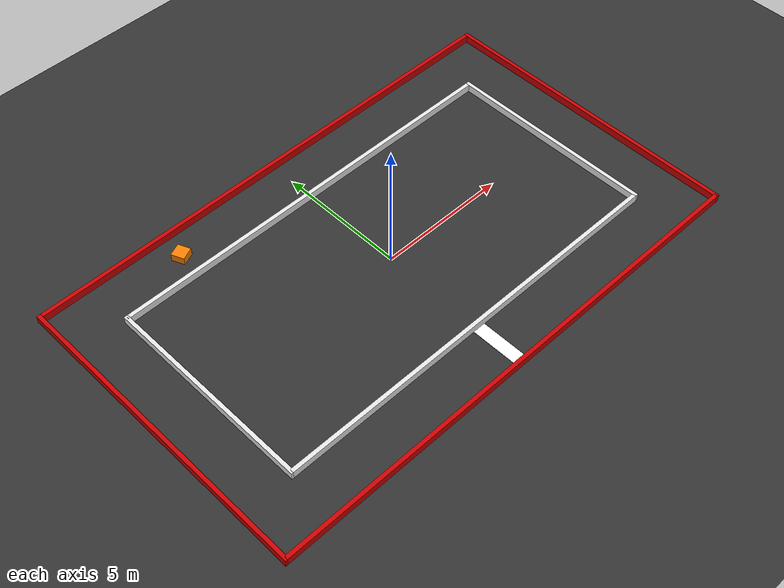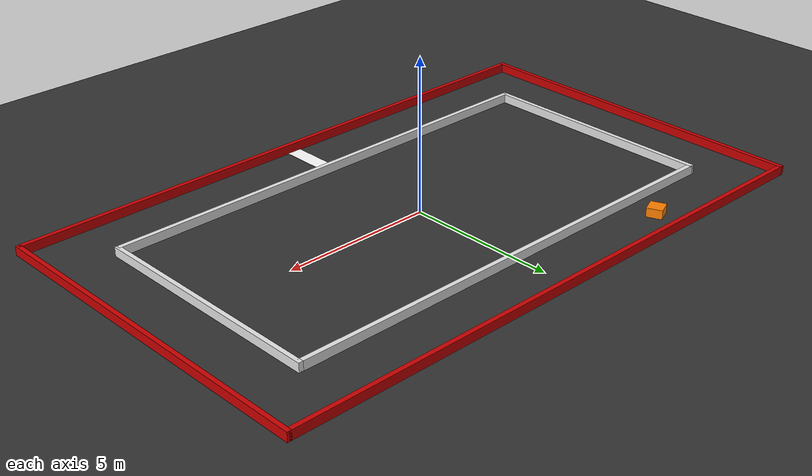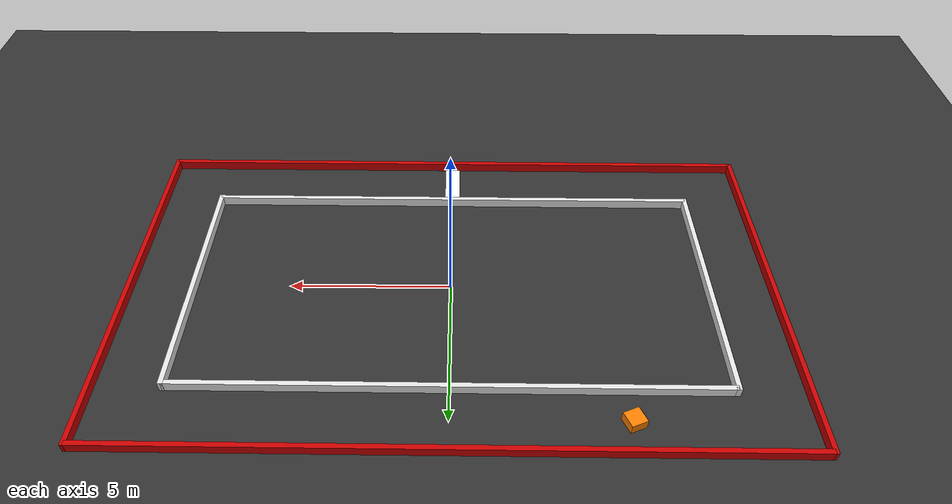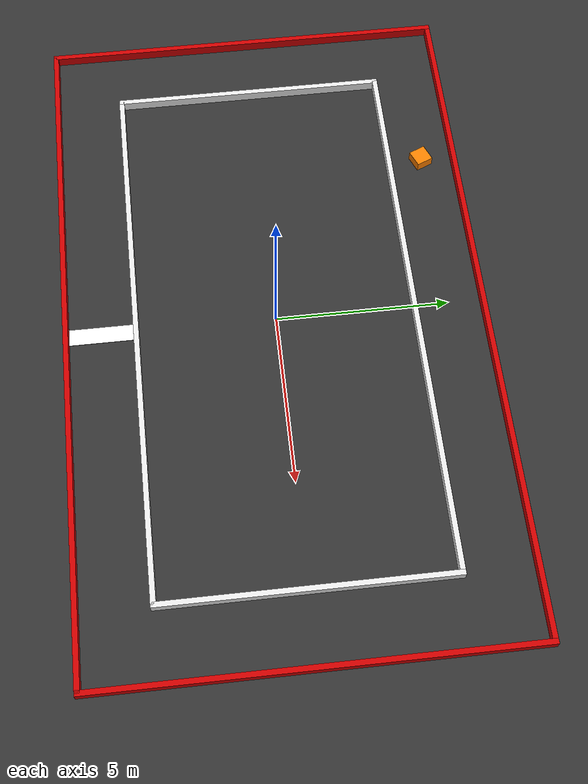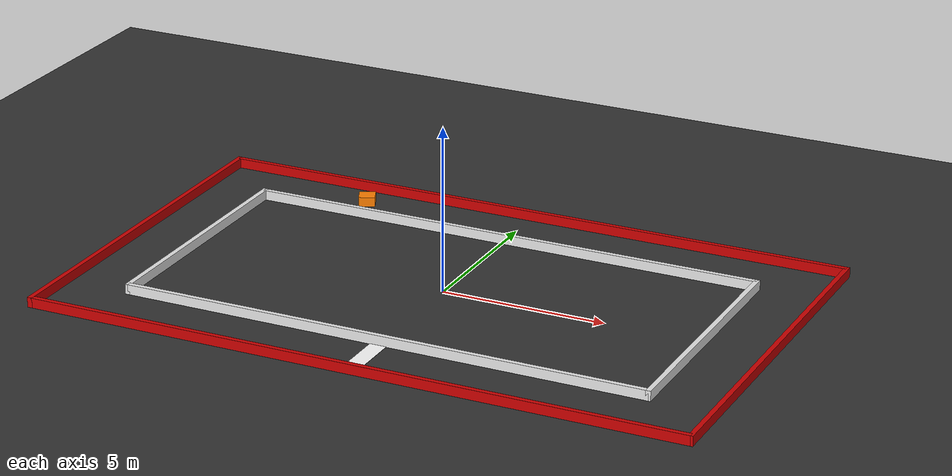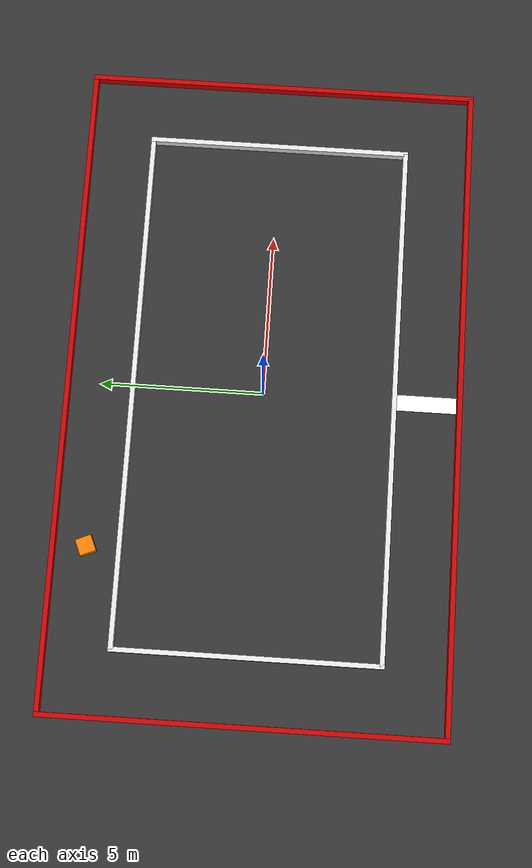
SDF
<sdf version="1.8">
 <world name="cybertruck_world">
  <physics name="1ms" type="ignored">
   <max_step_size>0.001</max_step_size>
   <real_time_factor>1.0</real_time_factor>
  </physics>
  <plugin filename="libignition-gazebo-physics-system.so" name="ignition::gazebo::systems::Physics"/>
  <plugin filename="libignition-gazebo-user-commands-system.so" name="ignition::gazebo::systems::UserCommands"/>
  <plugin filename="libignition-gazebo-scene-broadcaster-system.so" name="ignition::gazebo::systems::SceneBroadcaster"/>
  <plugin filename="libignition-gazebo-sensors-system.so" name="ignition::gazebo::systems::Sensors">
   <render_engine>ogre2</render_engine>
  </plugin>
  <plugin filename="libignition-gazebo-imu-system.so" name="ignition::gazebo::systems::Imu"/>
  <light type="directional" name="sun">
   <pose>0 0 0.1 0 0 0</pose>
   <diffuse>0.8 0.8 0.8 1</diffuse>
   <specular>0.2 0.2 0.2 1</specular>
   <attenuation>
    <range>1000</range>
    <constant>0.9</constant>
    <linear>0.01</linear>
    <quadratic>0.001</quadratic>
   </attenuation>
   <direction>-0.5 0.1 -0.9</direction>
  </light>
  <model name="asphalt_ground">
   <static>true</static>
   <link name="link">
    <collision name="collision">
     <geometry><plane><normal>0 0 1</normal><size>50 50</size></plane></geometry>
    </collision>
    <visual name="visual">
     <geometry><plane><normal>0 0 1</normal><size>50 50</size></plane></geometry>
     <material>
      <ambient>0.2 0.2 0.2 1</ambient>
      <diffuse>0.2 0.2 0.2 1</diffuse>
      <specular>0.1 0.1 0.1 1</specular>
     </material>
    </visual>
   </link>
  </model>
  <model name="start_line">
   <static>true</static>
   <pose>0 -5 0.01 0 0 0</pose>
   <link name="link">
    <visual name="visual">
     <geometry><box><size>0.5 2 0.01</size></box></geometry>
     <material><ambient>1 1 1 1</ambient><diffuse>1 1 1 1</diffuse></material>
    </visual>
   </link>
  </model>
  <model name="outer_walls">
   <static>true</static>
   <link name="link">
    <collision name="top_col">
     <pose>0 6 0.15 0 0 0</pose>
     <geometry><box><size>20 0.15 0.3</size></box></geometry>
    </collision>
    <visual name="top_vis">
     <pose>0 6 0.15 0 0 0</pose>
     <geometry><box><size>20 0.15 0.3</size></box></geometry>
     <material><ambient>0.8 0 0 1</ambient><diffuse>0.8 0 0 1</diffuse></material>
    </visual>
    <collision name="bottom_col">
     <pose>0 -6 0.15 0 0 0</pose>
     <geometry><box><size>20 0.15 0.3</size></box></geometry>
    </collision>
    <visual name="bottom_vis">
     <pose>0 -6 0.15 0 0 0</pose>
     <geometry><box><size>20 0.15 0.3</size></box></geometry>
     <material><ambient>0.8 0 0 1</ambient><diffuse>0.8 0 0 1</diffuse></material>
    </visual>
    <collision name="right_col">
     <pose>10 0 0.15 0 0 0</pose>
     <geometry><box><size>0.15 12.15 0.3</size></box></geometry>
    </collision>
    <visual name="right_vis">
     <pose>10 0 0.15 0 0 0</pose>
     <geometry><box><size>0.15 12.15 0.3</size></box></geometry>
     <material><ambient>0.8 0 0 1</ambient><diffuse>0.8 0 0 1</diffuse></material>
    </visual>
    <collision name="left_col">
     <pose>-10 0 0.15 0 0 0</pose>
     <geometry><box><size>0.15 12.15 0.3</size></box></geometry>
    </collision>
    <visual name="left_vis">
     <pose>-10 0 0.15 0 0 0</pose>
     <geometry><box><size>0.15 12.15 0.3</size></box></geometry>
     <material><ambient>0.8 0 0 1</ambient><diffuse>0.8 0 0 1</diffuse></material>
    </visual>
   </link>
  </model>
  <model name="inner_walls">
   <static>true</static>
   <link name="link">
    <collision name="top_in">
     <pose>0 4 0.15 0 0 0</pose>
     <geometry><box><size>16 0.15 0.3</size></box></geometry>
    </collision>
    <visual name="top_in_vis">
     <pose>0 4 0.15 0 0 0</pose>
     <geometry><box><size>16 0.15 0.3</size></box></geometry>
     <material><ambient>0.9 0.9 0.9 1</ambient><diffuse>0.9 0.9 0.9 1</diffuse></material>
    </visual>
    <collision name="bottom_in">
     <pose>0 -4 0.15 0 0 0</pose>
     <geometry><box><size>16 0.15 0.3</size></box></geometry>
    </collision>
    <visual name="bottom_in_vis">
     <pose>0 -4 0.15 0 0 0</pose>
     <geometry><box><size>16 0.15 0.3</size></box></geometry>
     <material><ambient>0.9 0.9 0.9 1</ambient><diffuse>0.9 0.9 0.9 1</diffuse></material>
    </visual>
    <collision name="right_in">
     <pose>8 0 0.15 0 0 0</pose>
     <geometry><box><size>0.15 8.15 0.3</size></box></geometry>
    </collision>
    <visual name="right_in_vis">
     <pose>8 0 0.15 0 0 0</pose>
     <geometry><box><size>0.15 8.15 0.3</size></box></geometry>
     <material><ambient>0.9 0.9 0.9 1</ambient><diffuse>0.9 0.9 0.9 1</diffuse></material>
    </visual>
    <collision name="left_in">
     <pose>-8 0 0.15 0 0 0</pose>
     <geometry><box><size>0.15 8.15 0.3</size></box></geometry>
    </collision>
    <visual name="left_in_vis">
     <pose>-8 0 0.15 0 0 0</pose>
     <geometry><box><size>0.15 8.15 0.3</size></box></geometry>
     <material><ambient>0.9 0.9 0.9 1</ambient><diffuse>0.9 0.9 0.9 1</diffuse></material>
    </visual>
   </link>
  </model>
  <model name="small_box_obstacle">
   <static>true</static>
   <pose>-5 5 0.15 0 0 0.4</pose>
   <link name="link">
    <collision name="col"><geometry><box><size>0.5 0.5 0.3</size></box></geometry></collision>
    <visual name="vis">
     <geometry><box><size>0.5 0.5 0.3</size></box></geometry>
     <material><ambient>1 0.5 0 1</ambient><diffuse>1 0.5 0 1</diffuse></material>
    </visual>
   </link>
  </model>
 </world>
</sdf>
